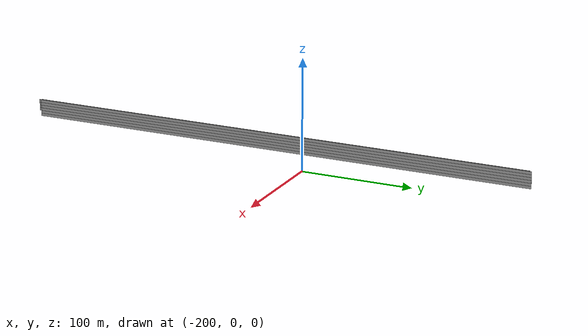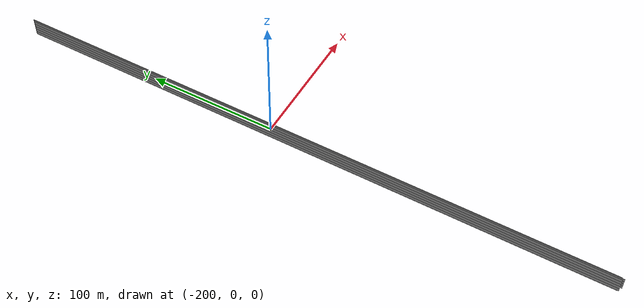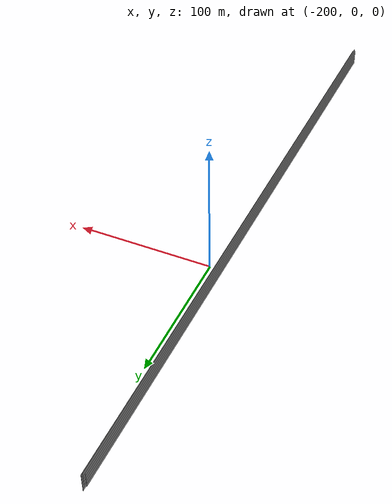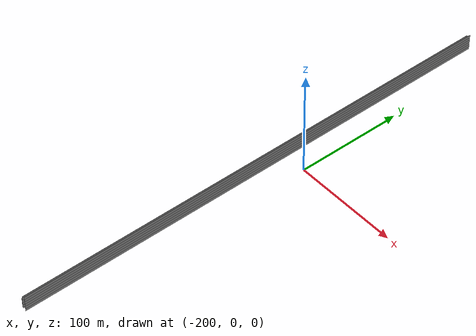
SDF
<sdf version="1.6">
 <model name="10floor">
  <pose>-4881.98 1418.69 0 0 -0 0</pose>
  <link name="Wall_107">
   <collision name="Wall_107_Collision">
    <geometry><box><size>464.25 0.15 2.5</size></box></geometry>
    <pose>0 0 1.25 0 -0 0</pose>
   </collision>
   <visual name="Wall_107_Visual">
    <pose>0 0 1.25 0 -0 0</pose>
    <geometry><box><size>464.25 0.15 2.5</size></box></geometry>
    <material>
     <script><uri>file://media/materials/scripts/gazebo.material</uri><name>Gazebo/Grey</name></script>
     <ambient>1 1 1 1</ambient>
    </material>
    <meta><layer>9</layer></meta>
   </visual>
   <pose>4668.72 -1451.36 22.5 0 -0 1.5708</pose>
  </link>
  <link name="Wall_112">
   <collision name="Wall_112_Collision">
    <geometry><box><size>462.75 0.15 2.5</size></box></geometry>
    <pose>0 0 1.25 0 -0 0</pose>
   </collision>
   <visual name="Wall_112_Visual">
    <pose>0 0 1.25 0 -0 0</pose>
    <geometry><box><size>462.75 0.15 2.5</size></box></geometry>
    <material>
     <script><uri>file://media/materials/scripts/gazebo.material</uri><name>Gazebo/Grey</name></script>
     <ambient>1 1 1 1</ambient>
    </material>
    <meta><layer>9</layer></meta>
   </visual>
   <pose>4667.2 -1452.68 22.5 0 -0 1.5708</pose>
  </link>
  <link name="Wall_117">
   <collision name="Wall_117_Collision">
    <geometry><box><size>465 0.15 2.5</size></box></geometry>
    <pose>0 0 1.25 0 -0 0</pose>
   </collision>
   <visual name="Wall_117_Visual">
    <pose>0 0 1.25 0 -0 0</pose>
    <geometry><box><size>465 0.15 2.5</size></box></geometry>
    <material>
     <script><uri>file://media/materials/scripts/gazebo.material</uri><name>Gazebo/Grey</name></script>
     <ambient>1 1 1 1</ambient>
    </material>
    <meta><layer>9</layer></meta>
   </visual>
   <pose>4668.27 -1452.76 22.5 0 -0 1.5708</pose>
  </link>
  <link name="Wall_129">
   <collision name="Wall_129_Collision">
    <geometry><box><size>460.25 0.15 2.5</size></box></geometry>
    <pose>0 0 1.25 0 -0 0</pose>
   </collision>
   <visual name="Wall_129_Visual">
    <pose>0 0 1.25 0 -0 0</pose>
    <geometry><box><size>460.25 0.15 2.5</size></box></geometry>
    <material>
     <script><uri>file://media/materials/scripts/gazebo.material</uri><name>Gazebo/Grey</name></script>
     <ambient>1 1 1 1</ambient>
    </material>
    <meta><layer>9</layer></meta>
   </visual>
   <pose>4668.33 -1452.21 22.5 0 -0 1.5708</pose>
  </link>
  <link name="Wall_18">
   <collision name="Wall_18_Collision">
    <geometry><box><size>464.25 0.15 2.5</size></box></geometry>
    <pose>0 0 1.25 0 -0 0</pose>
   </collision>
   <visual name="Wall_18_Visual">
    <pose>0 0 1.25 0 -0 0</pose>
    <geometry><box><size>464.25 0.15 2.5</size></box></geometry>
    <material>
     <script><uri>file://media/materials/scripts/gazebo.material</uri><name>Gazebo/Grey</name></script>
     <ambient>1 1 1 1</ambient>
    </material>
    <meta><layer>4</layer></meta>
   </visual>
   <pose>4668.72 -1451.36 10 0 -0 1.5708</pose>
  </link>
  <link name="Wall_27">
   <collision name="Wall_27_Collision">
    <geometry><box><size>464.25 0.15 2.5</size></box></geometry>
    <pose>0 0 1.25 0 -0 0</pose>
   </collision>
   <visual name="Wall_27_Visual">
    <pose>0 0 1.25 0 -0 0</pose>
    <geometry><box><size>464.25 0.15 2.5</size></box></geometry>
    <material>
     <script><uri>file://media/materials/scripts/gazebo.material</uri><name>Gazebo/Grey</name></script>
     <ambient>1 1 1 1</ambient>
    </material>
    <meta><layer>5</layer></meta>
   </visual>
   <pose>4668.72 -1451.36 12.5 0 -0 1.5708</pose>
  </link>
  <link name="Wall_32">
   <collision name="Wall_32_Collision">
    <geometry><box><size>462.75 0.15 2.5</size></box></geometry>
    <pose>0 0 1.25 0 -0 0</pose>
   </collision>
   <visual name="Wall_32_Visual">
    <pose>0 0 1.25 0 -0 0</pose>
    <geometry><box><size>462.75 0.15 2.5</size></box></geometry>
    <material>
     <script><uri>file://media/materials/scripts/gazebo.material</uri><name>Gazebo/Grey</name></script>
     <ambient>1 1 1 1</ambient>
    </material>
    <meta><layer>5</layer></meta>
   </visual>
   <pose>4667.2 -1452.68 12.5 0 -0 1.5708</pose>
  </link>
  <link name="Wall_41">
   <collision name="Wall_41_Collision">
    <geometry><box><size>464.25 0.15 2.5</size></box></geometry>
    <pose>0 0 1.25 0 -0 0</pose>
   </collision>
   <visual name="Wall_41_Visual">
    <pose>0 0 1.25 0 -0 0</pose>
    <geometry><box><size>464.25 0.15 2.5</size></box></geometry>
    <material>
     <script><uri>file://media/materials/scripts/gazebo.material</uri><name>Gazebo/Grey</name></script>
     <ambient>1 1 1 1</ambient>
    </material>
    <meta><layer>6</layer></meta>
   </visual>
   <pose>4668.72 -1451.36 15 0 -0 1.5708</pose>
  </link>
  <link name="Wall_46">
   <collision name="Wall_46_Collision">
    <geometry><box><size>462.75 0.15 2.5</size></box></geometry>
    <pose>0 0 1.25 0 -0 0</pose>
   </collision>
   <visual name="Wall_46_Visual">
    <pose>0 0 1.25 0 -0 0</pose>
    <geometry><box><size>462.75 0.15 2.5</size></box></geometry>
    <material>
     <script><uri>file://media/materials/scripts/gazebo.material</uri><name>Gazebo/Grey</name></script>
     <ambient>1 1 1 1</ambient>
    </material>
    <meta><layer>6</layer></meta>
   </visual>
   <pose>4667.2 -1452.68 15 0 -0 1.5708</pose>
  </link>
  <link name="Wall_51">
   <collision name="Wall_51_Collision">
    <geometry><box><size>465 0.15 2.5</size></box></geometry>
    <pose>0 0 1.25 0 -0 0</pose>
   </collision>
   <visual name="Wall_51_Visual">
    <pose>0 0 1.25 0 -0 0</pose>
    <geometry><box><size>465 0.15 2.5</size></box></geometry>
    <material>
     <script><uri>file://media/materials/scripts/gazebo.material</uri><name>Gazebo/Grey</name></script>
     <ambient>1 1 1 1</ambient>
    </material>
    <meta><layer>6</layer></meta>
   </visual>
   <pose>4668.27 -1452.76 15 0 -0 1.5708</pose>
  </link>
  <link name="Wall_59">
   <collision name="Wall_59_Collision">
    <geometry><box><size>464.25 0.15 2.5</size></box></geometry>
    <pose>0 0 1.25 0 -0 0</pose>
   </collision>
   <visual name="Wall_59_Visual">
    <pose>0 0 1.25 0 -0 0</pose>
    <geometry><box><size>464.25 0.15 2.5</size></box></geometry>
    <material>
     <script><uri>file://media/materials/scripts/gazebo.material</uri><name>Gazebo/Grey</name></script>
     <ambient>1 1 1 1</ambient>
    </material>
    <meta><layer>7</layer></meta>
   </visual>
   <pose>4668.72 -1451.36 17.5 0 -0 1.5708</pose>
  </link>
  <link name="Wall_64">
   <collision name="Wall_64_Collision">
    <geometry><box><size>462.75 0.15 2.5</size></box></geometry>
    <pose>0 0 1.25 0 -0 0</pose>
   </collision>
   <visual name="Wall_64_Visual">
    <pose>0 0 1.25 0 -0 0</pose>
    <geometry><box><size>462.75 0.15 2.5</size></box></geometry>
    <material>
     <script><uri>file://media/materials/scripts/gazebo.material</uri><name>Gazebo/Grey</name></script>
     <ambient>1 1 1 1</ambient>
    </material>
    <meta><layer>7</layer></meta>
   </visual>
   <pose>4667.2 -1452.68 17.5 0 -0 1.5708</pose>
  </link>
  <link name="Wall_69">
   <collision name="Wall_69_Collision">
    <geometry><box><size>465 0.15 2.5</size></box></geometry>
    <pose>0 0 1.25 0 -0 0</pose>
   </collision>
   <visual name="Wall_69_Visual">
    <pose>0 0 1.25 0 -0 0</pose>
    <geometry><box><size>465 0.15 2.5</size></box></geometry>
    <material>
     <script><uri>file://media/materials/scripts/gazebo.material</uri><name>Gazebo/Grey</name></script>
     <ambient>1 1 1 1</ambient>
    </material>
    <meta><layer>7</layer></meta>
   </visual>
   <pose>4668.27 -1452.76 17.5 0 -0 1.5708</pose>
  </link>
  <link name="Wall_81">
   <collision name="Wall_81_Collision">
    <geometry><box><size>464.25 0.15 2.5</size></box></geometry>
    <pose>0 0 1.25 0 -0 0</pose>
   </collision>
   <visual name="Wall_81_Visual">
    <pose>0 0 1.25 0 -0 0</pose>
    <geometry><box><size>464.25 0.15 2.5</size></box></geometry>
    <material>
     <script><uri>file://media/materials/scripts/gazebo.material</uri><name>Gazebo/Grey</name></script>
     <ambient>1 1 1 1</ambient>
    </material>
    <meta><layer>8</layer></meta>
   </visual>
   <pose>4668.72 -1451.36 20 0 -0 1.5708</pose>
  </link>
  <link name="Wall_86">
   <collision name="Wall_86_Collision">
    <geometry><box><size>462.75 0.15 2.5</size></box></geometry>
    <pose>0 0 1.25 0 -0 0</pose>
   </collision>
   <visual name="Wall_86_Visual">
    <pose>0 0 1.25 0 -0 0</pose>
    <geometry><box><size>462.75 0.15 2.5</size></box></geometry>
    <material>
     <script><uri>file://media/materials/scripts/gazebo.material</uri><name>Gazebo/Grey</name></script>
     <ambient>1 1 1 1</ambient>
    </material>
    <meta><layer>8</layer></meta>
   </visual>
   <pose>4667.2 -1452.68 20 0 -0 1.5708</pose>
  </link>
  <link name="Wall_91">
   <collision name="Wall_91_Collision">
    <geometry><box><size>465 0.15 2.5</size></box></geometry>
    <pose>0 0 1.25 0 -0 0</pose>
   </collision>
   <visual name="Wall_91_Visual">
    <pose>0 0 1.25 0 -0 0</pose>
    <geometry><box><size>465 0.15 2.5</size></box></geometry>
    <material>
     <script><uri>file://media/materials/scripts/gazebo.material</uri><name>Gazebo/Grey</name></script>
     <ambient>1 1 1 1</ambient>
    </material>
    <meta><layer>8</layer></meta>
   </visual>
   <pose>4668.27 -1452.76 20 0 -0 1.5708</pose>
  </link>
  <static>1</static>
 </model>
</sdf>
